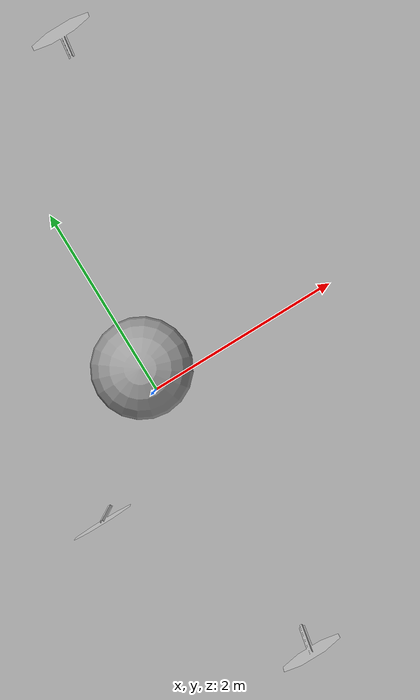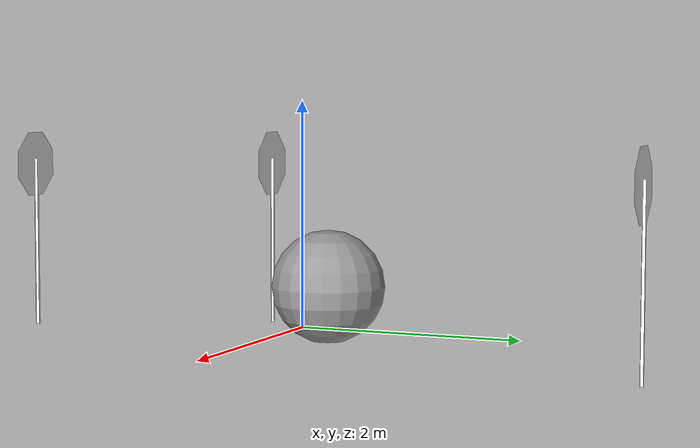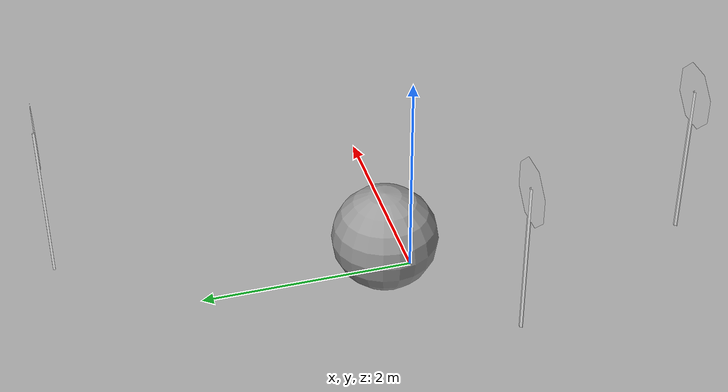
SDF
<?xml version='1.0'?>
<sdf version='1.6'>
  <model name='Base'>
    <link name='link_0'>
      <pose frame=''>0 0.25 0.375 0 -0 0</pose>
      <inertial>
        <mass>1</mass>
        <inertia>
          <ixx>0.1</ixx>
          <ixy>0</ixy>
          <ixz>0</ixz>
          <iyy>0.1</iyy>
          <iyz>0</iyz>
          <izz>0.1</izz>
        </inertia>
      </inertial>
      <visual name='visual'>
        <pose frame=''>0 0 0 0 -0 0</pose>
        <geometry>
          <sphere>
            <radius>0.5</radius>
          </sphere>
        </geometry>
        <material>
          <lighting>1</lighting>
          <script>
            <uri>file://media/materials/scripts/gazebo.material</uri>
            <name>Gazebo/Grey</name>
          </script>
          <ambient>0.3 0.3 0.3 1</ambient>
          <diffuse>0.7 0.7 0.7 1</diffuse>
          <specular>0.01 0.01 0.01 1</specular>
          <emissive>0 0 0 1</emissive>
        </material>
        <cast_shadows>1</cast_shadows>
        <transparency>0</transparency>
      </visual>
      <collision name='collision'>
        <laser_retro>0</laser_retro>
        <max_contacts>10</max_contacts>
        <pose frame=''>0 0 0 0 -0 0</pose>
        <geometry>
          <sphere>
            <radius>0.5</radius>
          </sphere>
        </geometry>
        <surface>
          <friction>
            <ode>
              <mu>1</mu>
              <mu2>1</mu2>
              <fdir1>0 0 0</fdir1>
              <slip1>0</slip1>
              <slip2>0</slip2>
            </ode>
            <torsional>
              <coefficient>1</coefficient>
              <patch_radius>0</patch_radius>
              <surface_radius>0</surface_radius>
              <use_patch_radius>1</use_patch_radius>
              <ode>
                <slip>0</slip>
              </ode>
            </torsional>
          </friction>
          <bounce>
            <restitution_coefficient>0</restitution_coefficient>
            <threshold>1e+06</threshold>
          </bounce>
          <contact>
            <collide_without_contact>0</collide_without_contact>
            <collide_without_contact_bitmask>1</collide_without_contact_bitmask>
            <collide_bitmask>1</collide_bitmask>
            <ode>
              <soft_cfm>0</soft_cfm>
              <soft_erp>0.2</soft_erp>
              <kp>1e+13</kp>
              <kd>1</kd>
              <max_vel>0.01</max_vel>
              <min_depth>0</min_depth>
            </ode>
            <bullet>
              <split_impulse>1</split_impulse>
              <split_impulse_penetration_threshold>-0.01</split_impulse_penetration_threshold>
              <soft_cfm>0</soft_cfm>
              <soft_erp>0.2</soft_erp>
              <kp>1e+13</kp>
              <kd>1</kd>
            </bullet>
          </contact>
        </surface>
      </collision>
    </link>
    <model name='Stop Sign'>
      <link name='link'>
        <collision name='collision'>
          <geometry>
            <mesh>
              <uri>model://stop_sign/meshes/stop_sign.dae</uri>
            </mesh>
          </geometry>
        </collision>
        <visual name='visual'>
          <geometry>
            <mesh>
              <uri>model://stop_sign/meshes/stop_sign.dae</uri>
            </mesh>
          </geometry>
          <material>
            <script>
              <uri>model://stop_sign/materials/scripts</uri>
              <uri>model://stop_sign/materials/textures</uri>
              <name>StopSign/Diffuse</name>
            </script>
          </material>
        </visual>
      </link>
      <pose frame=''>-1 -0.75 -0.125 0 -0 0</pose>
    </model>
    <model name='Stop Sign_0'>
      <link name='link'>
        <collision name='collision'>
          <geometry>
            <mesh>
              <uri>model://stop_sign/meshes/stop_sign.dae</uri>
            </mesh>
          </geometry>
        </collision>
        <visual name='visual'>
          <geometry>
            <mesh>
              <uri>model://stop_sign/meshes/stop_sign.dae</uri>
            </mesh>
          </geometry>
          <material>
            <script>
              <uri>model://stop_sign/materials/scripts</uri>
              <uri>model://stop_sign/materials/textures</uri>
              <name>StopSign/Diffuse</name>
            </script>
          </material>
        </visual>
      </link>
      <pose frame=''>0 -2.75 -0.125 0 -0 0</pose>
    </model>
    <model name='Stop Sign_1'>
      <link name='link'>
        <collision name='collision'>
          <geometry>
            <mesh>
              <uri>model://stop_sign/meshes/stop_sign.dae</uri>
            </mesh>
          </geometry>
        </collision>
        <visual name='visual'>
          <geometry>
            <mesh>
              <uri>model://stop_sign/meshes/stop_sign.dae</uri>
            </mesh>
          </geometry>
          <material>
            <script>
              <uri>model://stop_sign/materials/scripts</uri>
              <uri>model://stop_sign/materials/textures</uri>
              <name>StopSign/Diffuse</name>
            </script>
          </material>
        </visual>
      </link>
      <pose frame=''>1 3.25 -0.125 0 -0 0</pose>
    </model>
    <static>0</static>
    <allow_auto_disable>1</allow_auto_disable>
  </model>
</sdf>
